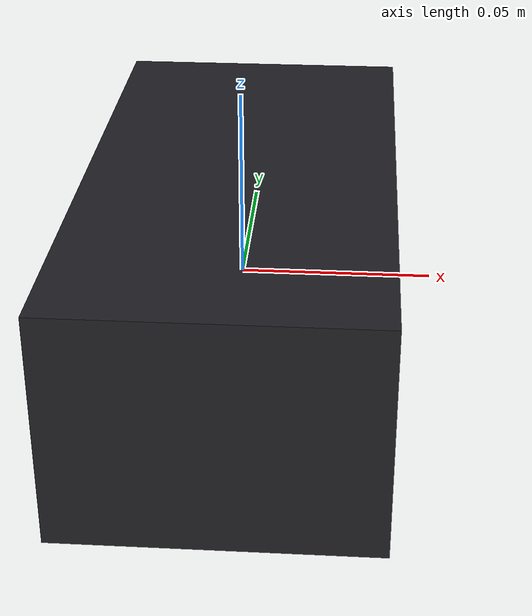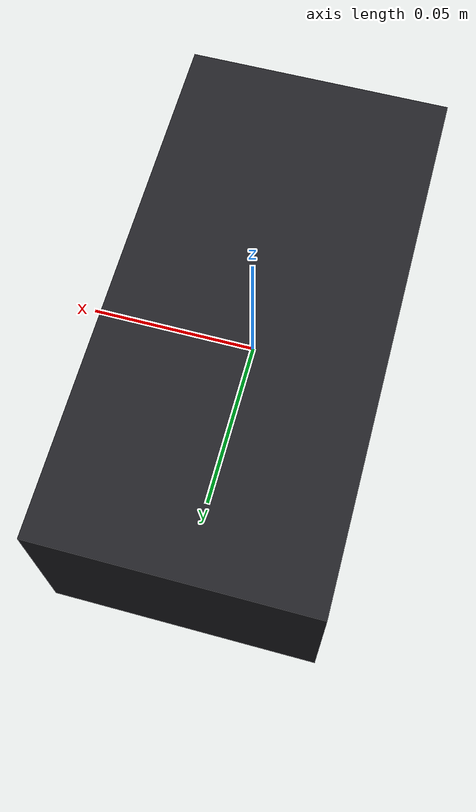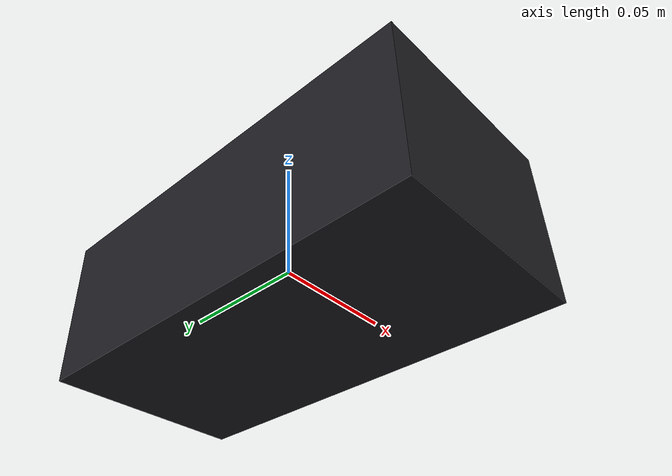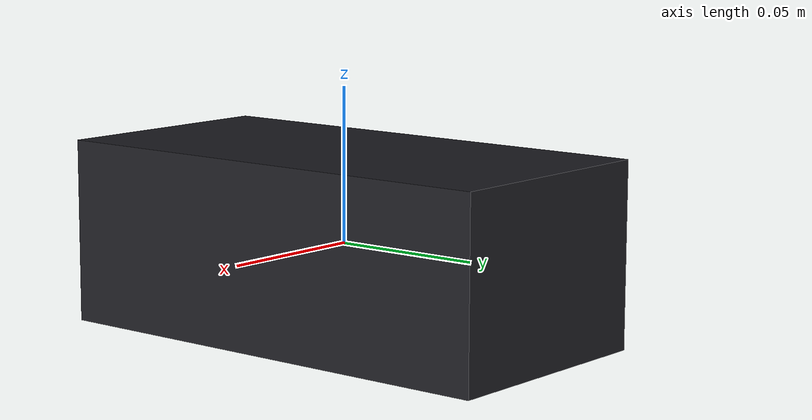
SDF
<?xml version="1.0"?>
<sdf version="1.10">
  <model name="strawberry_rgbd_camera">
    <static>true</static>
    <link name="strawberry_camera_link">
      <visual name="housing_visual">
        <geometry><box><size>0.08 0.16 0.06</size></box></geometry>
        <material><ambient>0.06 0.06 0.07 1</ambient><diffuse>0.12 0.12 0.14 1</diffuse></material>
      </visual>
      <sensor name="rgbd" type="rgbd_camera">
        <camera>
          <horizontal_fov>1.0471975512</horizontal_fov>
          <image>
            <width>640</width>
            <height>480</height>
            <format>R8G8B8</format>
          </image>
          <clip>
            <near>0.10</near>
            <far>5.0</far>
          </clip>
          <optical_frame_id>strawberry_camera_optical_frame</optical_frame_id>
        </camera>
        <always_on>true</always_on>
        <update_rate>30</update_rate>
        <visualize>true</visualize>
        <topic>/camera</topic>
        <gz_frame_id>strawberry_camera_optical_frame</gz_frame_id>
      </sensor>
    </link>
  </model>
</sdf>
